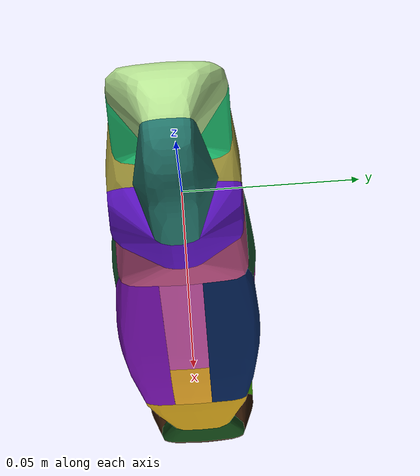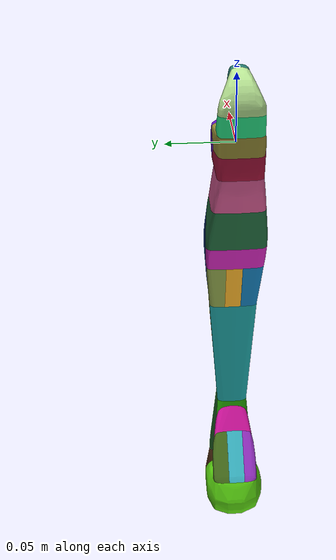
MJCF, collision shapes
<mujoco model="rear_right_lower_leg">
  <default>
    <default class="visual">
      <geom group="2" type="mesh" contype="0" conaffinity="0"/>
    </default>
    <default class="collision">
      <geom group="3" type="mesh"/>
    </default>
  </default>
  <asset>
    <material name="material_0" specular="1.0" shininess="0.2" rgba="0.27450980 0.27450980 0.27450980 1.0"/>
    <mesh file="rear_right_lower_leg.obj"/>
    <mesh file="rear_right_lower_leg_collision_0.obj"/>
    <mesh file="rear_right_lower_leg_collision_1.obj"/>
    <mesh file="rear_right_lower_leg_collision_2.obj"/>
    <mesh file="rear_right_lower_leg_collision_3.obj"/>
    <mesh file="rear_right_lower_leg_collision_4.obj"/>
    <mesh file="rear_right_lower_leg_collision_5.obj"/>
    <mesh file="rear_right_lower_leg_collision_6.obj"/>
    <mesh file="rear_right_lower_leg_collision_7.obj"/>
    <mesh file="rear_right_lower_leg_collision_8.obj"/>
    <mesh file="rear_right_lower_leg_collision_9.obj"/>
    <mesh file="rear_right_lower_leg_collision_10.obj"/>
    <mesh file="rear_right_lower_leg_collision_11.obj"/>
    <mesh file="rear_right_lower_leg_collision_12.obj"/>
    <mesh file="rear_right_lower_leg_collision_13.obj"/>
    <mesh file="rear_right_lower_leg_collision_14.obj"/>
    <mesh file="rear_right_lower_leg_collision_15.obj"/>
    <mesh file="rear_right_lower_leg_collision_16.obj"/>
    <mesh file="rear_right_lower_leg_collision_17.obj"/>
    <mesh file="rear_right_lower_leg_collision_18.obj"/>
    <mesh file="rear_right_lower_leg_collision_19.obj"/>
    <mesh file="rear_right_lower_leg_collision_20.obj"/>
    <mesh file="rear_right_lower_leg_collision_21.obj"/>
    <mesh file="rear_right_lower_leg_collision_22.obj"/>
    <mesh file="rear_right_lower_leg_collision_23.obj"/>
    <mesh file="rear_right_lower_leg_collision_24.obj"/>
    <mesh file="rear_right_lower_leg_collision_25.obj"/>
    <mesh file="rear_right_lower_leg_collision_26.obj"/>
  </asset>
  <worldbody>
    <body name="rear_right_lower_leg">
      <geom material="material_0" mesh="rear_right_lower_leg" class="visual"/>
      <geom mesh="rear_right_lower_leg_collision_0" rgba="0.13391166787128495 0.7132780387946728 0.718730065158894 1" class="collision"/>
      <geom mesh="rear_right_lower_leg_collision_1" rgba="0.8815561317379269 0.6826875247300015 0.105850335208999 1" class="collision"/>
      <geom mesh="rear_right_lower_leg_collision_2" rgba="0.18032542884316194 0.08325505104852438 0.014514970998274812 1" class="collision"/>
      <geom mesh="rear_right_lower_leg_collision_3" rgba="0.3712924902007696 0.8678052619301262 0.07154466866136577 1" class="collision"/>
      <geom mesh="rear_right_lower_leg_collision_4" rgba="0.08671607857297647 0.3188857090626461 0.10412410022106677 1" class="collision"/>
      <geom mesh="rear_right_lower_leg_collision_5" rgba="0.914009688458612 0.08494733672959143 0.6901985421588542 1" class="collision"/>
      <geom mesh="rear_right_lower_leg_collision_6" rgba="0.5949861942037895 0.19106225056018566 0.7774461322888482 1" class="collision"/>
      <geom mesh="rear_right_lower_leg_collision_7" rgba="0.32511183335444627 0.7913741599984087 0.8611645284929468 1" class="collision"/>
      <geom mesh="rear_right_lower_leg_collision_8" rgba="0.1482573621122072 0.48656511830474625 0.4425273808704496 1" class="collision"/>
      <geom mesh="rear_right_lower_leg_collision_9" rgba="0.7918688242566527 0.33165224283128325 0.5412584655605847 1" class="collision"/>
      <geom mesh="rear_right_lower_leg_collision_10" rgba="0.14919386598924644 0.6500525678315158 0.02373693933786447 1" class="collision"/>
      <geom mesh="rear_right_lower_leg_collision_11" rgba="0.8602670113649562 0.36011354331578427 0.7160038584405454 1" class="collision"/>
      <geom mesh="rear_right_lower_leg_collision_12" rgba="0.9225586287410977 0.4781206182109514 0.9868972038321051 1" class="collision"/>
      <geom mesh="rear_right_lower_leg_collision_13" rgba="0.2721282436001812 0.4286374507685142 0.10450988600454236 1" class="collision"/>
      <geom mesh="rear_right_lower_leg_collision_14" rgba="0.566793737754619 0.6541989271225608 0.2975700401172777 1" class="collision"/>
      <geom mesh="rear_right_lower_leg_collision_15" rgba="0.8089857744730716 0.14333278483212075 0.7191417852694614 1" class="collision"/>
      <geom mesh="rear_right_lower_leg_collision_16" rgba="0.5307630901379888 0.07985849341061713 0.7762525778142774 1" class="collision"/>
      <geom mesh="rear_right_lower_leg_collision_17" rgba="0.37008874043916495 0.0758848535753307 0.7807545325718397 1" class="collision"/>
      <geom mesh="rear_right_lower_leg_collision_18" rgba="0.7226273888568421 0.8984346797406758 0.5793358668133977 1" class="collision"/>
      <geom mesh="rear_right_lower_leg_collision_19" rgba="0.6402863321582928 0.07305124345281488 0.2255308033768194 1" class="collision"/>
      <geom mesh="rear_right_lower_leg_collision_20" rgba="0.2305166937145703 0.7262873218755476 0.7870605583025594 1" class="collision"/>
      <geom mesh="rear_right_lower_leg_collision_21" rgba="0.15909116028489512 0.916434865661936 0.543353297435412 1" class="collision"/>
      <geom mesh="rear_right_lower_leg_collision_22" rgba="0.12188925289245112 0.4042665009184542 0.22884243624929124 1" class="collision"/>
      <geom mesh="rear_right_lower_leg_collision_23" rgba="0.9900203993219195 0.7167126335517735 0.16465754427163204 1" class="collision"/>
      <geom mesh="rear_right_lower_leg_collision_24" rgba="0.019770823802156667 0.14657494627739387 0.3760431459832567 1" class="collision"/>
      <geom mesh="rear_right_lower_leg_collision_25" rgba="0.07337214428821559 0.49474737142814995 0.7316853030020494 1" class="collision"/>
      <geom mesh="rear_right_lower_leg_collision_26" rgba="0.6005266779792492 0.5611735895382995 0.21218003611472958 1" class="collision"/>
    </body>
  </worldbody>
</mujoco>
